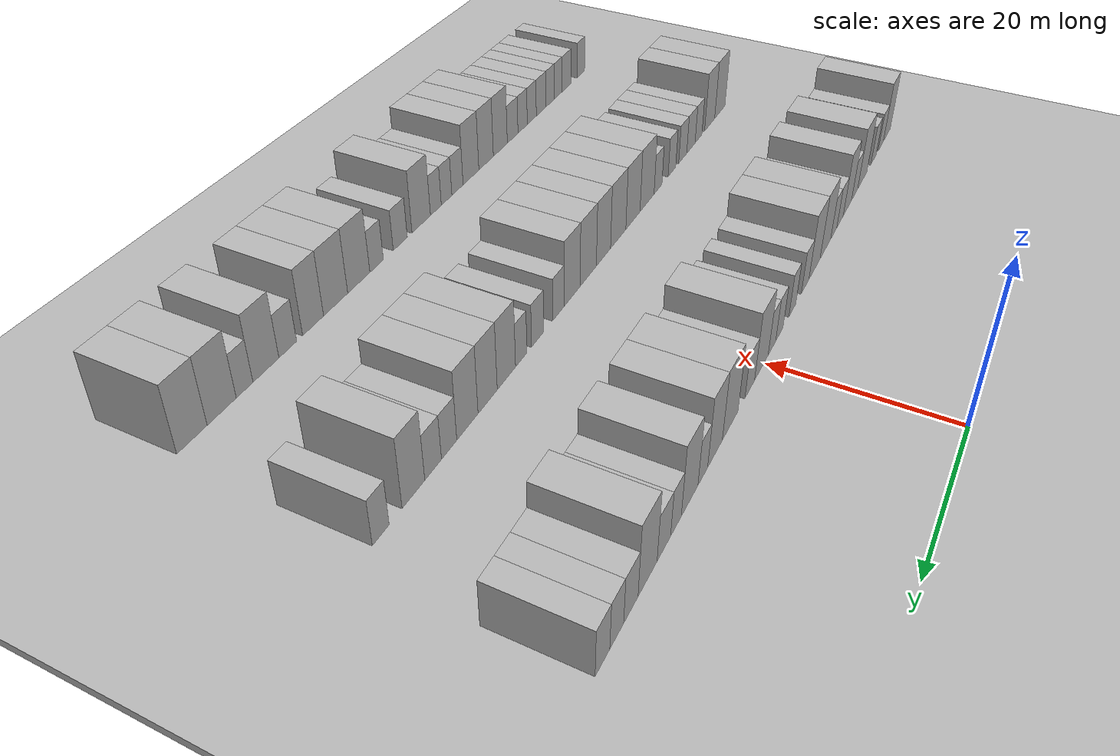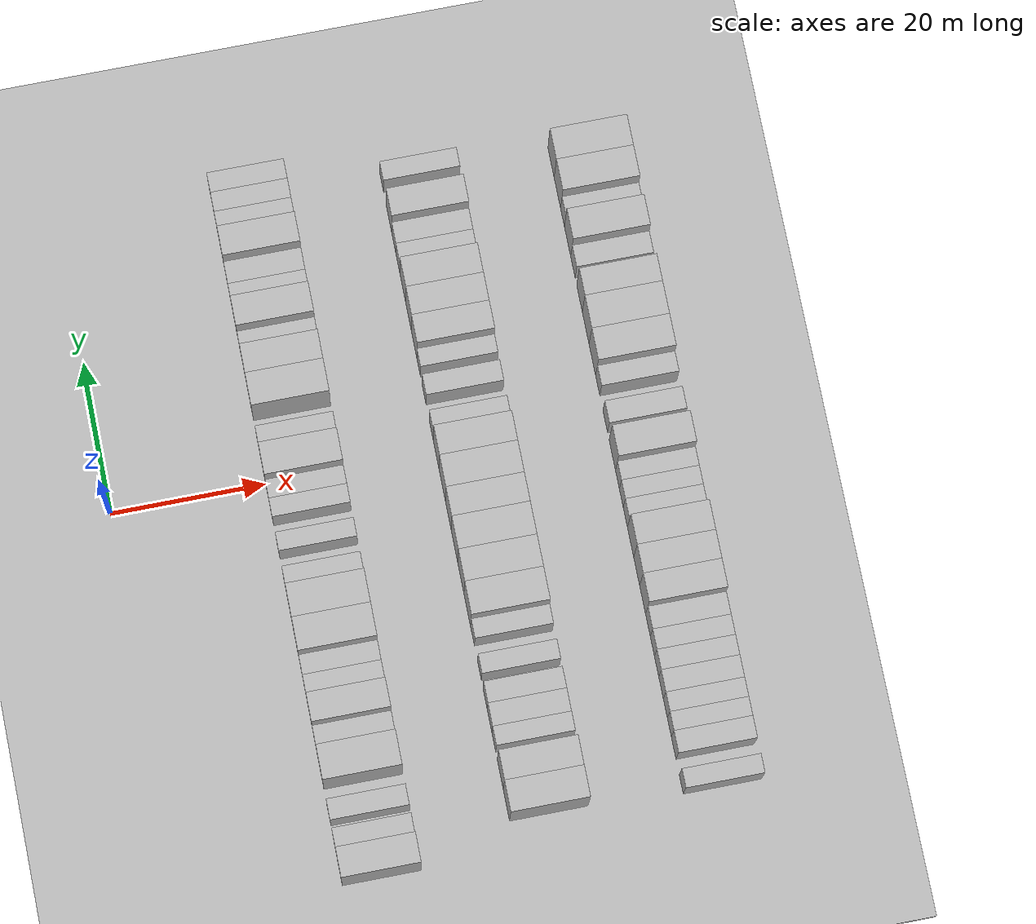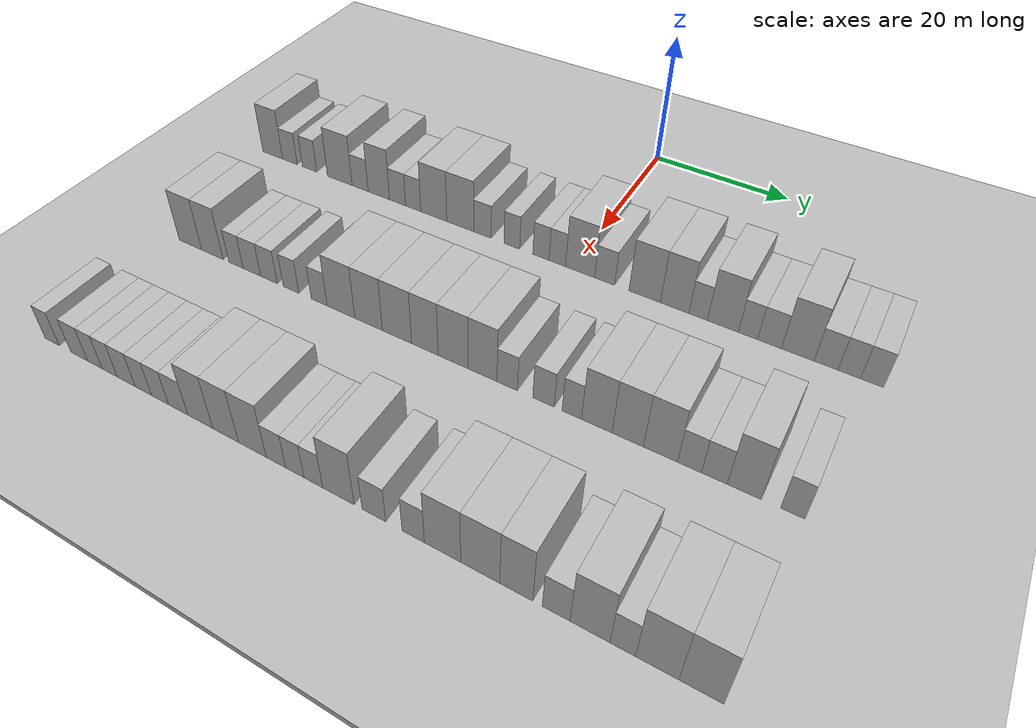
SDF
<sdf version="1.6">
 <world name="default">
  <include><name>ground_plane_1</name><uri>model://HANNAS_ground_plane</uri></include>
  <include>
   <name>ground_plane_2</name>
   <uri>model://HANNAS_ground_plane</uri>
   <pose>100 0 0  0 0 0</pose>
  </include>
  <model name="building_51">
   <static>1</static>
   <pose>25.0000 -50.2733 0 0.000000 0.000000 0.000000</pose>
   <link name="link">
    <pose>0 0 4.50 0 0 0</pose>
    <collision name="collision"><geometry><box><size>10.0000 3.8433 9.0000</size></box></geometry></collision>
    <visual name="visual">
     <cast_shadows>0</cast_shadows>
     <geometry><box><size>10.0000 3.8433 9.0000</size></box></geometry>
     <material>
      <script>
       <uri>model://HANNAS_wall/materials/scripts</uri>
       <uri>model://HANNAS_wall/materials/textures</uri>
       <name>vrc/HANNAS_wall</name>
      </script>
     </material>
    </visual>
   </link>
  </model>
  <model name="building_52">
   <static>1</static>
   <pose>25.0000 -46.9566 0 0.000000 0.000000 0.000000</pose>
   <link name="link">
    <pose>0 0 3.00 0 0 0</pose>
    <collision name="collision"><geometry><box><size>10.0000 2.7902 6.0000</size></box></geometry></collision>
    <visual name="visual">
     <cast_shadows>0</cast_shadows>
     <geometry><box><size>10.0000 2.7902 6.0000</size></box></geometry>
     <material>
      <script>
       <uri>model://HANNAS_wall/materials/scripts</uri>
       <uri>model://HANNAS_wall/materials/textures</uri>
       <name>vrc/HANNAS_wall</name>
      </script>
     </material>
    </visual>
   </link>
  </model>
  <model name="building_53">
   <static>1</static>
   <pose>25.0000 -43.2240 0 0.000000 0.000000 0.000000</pose>
   <link name="link">
    <pose>0 0 3.00 0 0 0</pose>
    <collision name="collision"><geometry><box><size>10.0000 2.6751 6.0000</size></box></geometry></collision>
    <visual name="visual">
     <cast_shadows>0</cast_shadows>
     <geometry><box><size>10.0000 2.6751 6.0000</size></box></geometry>
     <material>
      <script>
       <uri>model://HANNAS_wall/materials/scripts</uri>
       <uri>model://HANNAS_wall/materials/textures</uri>
       <name>vrc/HANNAS_wall</name>
      </script>
     </material>
    </visual>
   </link>
  </model>
  <model name="building_54">
   <static>1</static>
   <pose>25.0000 -37.6409 0 0.000000 0.000000 0.000000</pose>
   <link name="link">
    <pose>0 0 4.50 0 0 0</pose>
    <collision name="collision"><geometry><box><size>10.0000 4.4911 9.0000</size></box></geometry></collision>
    <visual name="visual">
     <cast_shadows>0</cast_shadows>
     <geometry><box><size>10.0000 4.4911 9.0000</size></box></geometry>
     <material>
      <script>
       <uri>model://HANNAS_wall/materials/scripts</uri>
       <uri>model://HANNAS_wall/materials/textures</uri>
       <name>vrc/HANNAS_wall</name>
      </script>
     </material>
    </visual>
   </link>
  </model>
  <model name="building_55">
   <static>1</static>
   <pose>25.0000 -33.9652 0 0.000000 0.000000 0.000000</pose>
   <link name="link">
    <pose>0 0 3.00 0 0 0</pose>
    <collision name="collision"><geometry><box><size>10.0000 2.8602 6.0000</size></box></geometry></collision>
    <visual name="visual">
     <cast_shadows>0</cast_shadows>
     <geometry><box><size>10.0000 2.8602 6.0000</size></box></geometry>
     <material>
      <script>
       <uri>model://HANNAS_wall/materials/scripts</uri>
       <uri>model://HANNAS_wall/materials/textures</uri>
       <name>vrc/HANNAS_wall</name>
      </script>
     </material>
    </visual>
   </link>
  </model>
  <model name="building_56">
   <static>1</static>
   <pose>25.0000 -30.6620 0 0.000000 0.000000 0.000000</pose>
   <link name="link">
    <pose>0 0 4.50 0 0 0</pose>
    <collision name="collision"><geometry><box><size>10.0000 3.7462 9.0000</size></box></geometry></collision>
    <visual name="visual">
     <cast_shadows>0</cast_shadows>
     <geometry><box><size>10.0000 3.7462 9.0000</size></box></geometry>
     <material>
      <script>
       <uri>model://HANNAS_wall/materials/scripts</uri>
       <uri>model://HANNAS_wall/materials/textures</uri>
       <name>vrc/HANNAS_wall</name>
      </script>
     </material>
    </visual>
   </link>
  </model>
  <model name="building_57">
   <static>1</static>
   <pose>25.0000 -27.4047 0 0.000000 0.000000 0.000000</pose>
   <link name="link">
    <pose>0 0 3.00 0 0 0</pose>
    <collision name="collision"><geometry><box><size>10.0000 2.7684 6.0000</size></box></geometry></collision>
    <visual name="visual">
     <cast_shadows>0</cast_shadows>
     <geometry><box><size>10.0000 2.7684 6.0000</size></box></geometry>
     <material>
      <script>
       <uri>model://HANNAS_wall/materials/scripts</uri>
       <uri>model://HANNAS_wall/materials/textures</uri>
       <name>vrc/HANNAS_wall</name>
      </script>
     </material>
    </visual>
   </link>
  </model>
  <model name="building_58">
   <static>1</static>
   <pose>25.0000 -24.7375 0 0.000000 0.000000 0.000000</pose>
   <link name="link">
    <pose>0 0 3.00 0 0 0</pose>
    <collision name="collision"><geometry><box><size>10.0000 2.5661 6.0000</size></box></geometry></collision>
    <visual name="visual">
     <cast_shadows>0</cast_shadows>
     <geometry><box><size>10.0000 2.5661 6.0000</size></box></geometry>
     <material>
      <script>
       <uri>model://HANNAS_wall/materials/scripts</uri>
       <uri>model://HANNAS_wall/materials/textures</uri>
       <name>vrc/HANNAS_wall</name>
      </script>
     </material>
    </visual>
   </link>
  </model>
  <model name="building_59">
   <static>1</static>
   <pose>25.0000 -21.2912 0 0.000000 0.000000 0.000000</pose>
   <link name="link">
    <pose>0 0 4.50 0 0 0</pose>
    <collision name="collision"><geometry><box><size>10.0000 4.3265 9.0000</size></box></geometry></collision>
    <visual name="visual">
     <cast_shadows>0</cast_shadows>
     <geometry><box><size>10.0000 4.3265 9.0000</size></box></geometry>
     <material>
      <script>
       <uri>model://HANNAS_wall/materials/scripts</uri>
       <uri>model://HANNAS_wall/materials/textures</uri>
       <name>vrc/HANNAS_wall</name>
      </script>
     </material>
    </visual>
   </link>
  </model>
  <model name="building_60">
   <static>1</static>
   <pose>25.0000 -16.9605 0 0.000000 0.000000 0.000000</pose>
   <link name="link">
    <pose>0 0 4.50 0 0 0</pose>
    <collision name="collision"><geometry><box><size>10.0000 4.3350 9.0000</size></box></geometry></collision>
    <visual name="visual">
     <cast_shadows>0</cast_shadows>
     <geometry><box><size>10.0000 4.3350 9.0000</size></box></geometry>
     <material>
      <script>
       <uri>model://HANNAS_wall/materials/scripts</uri>
       <uri>model://HANNAS_wall/materials/textures</uri>
       <name>vrc/HANNAS_wall</name>
      </script>
     </material>
    </visual>
   </link>
  </model>
  <model name="building_61">
   <static>1</static>
   <pose>25.0000 -13.3949 0 0.000000 0.000000 0.000000</pose>
   <link name="link">
    <pose>0 0 3.00 0 0 0</pose>
    <collision name="collision"><geometry><box><size>10.0000 2.7962 6.0000</size></box></geometry></collision>
    <visual name="visual">
     <cast_shadows>0</cast_shadows>
     <geometry><box><size>10.0000 2.7962 6.0000</size></box></geometry>
     <material>
      <script>
       <uri>model://HANNAS_wall/materials/scripts</uri>
       <uri>model://HANNAS_wall/materials/textures</uri>
       <name>vrc/HANNAS_wall</name>
      </script>
     </material>
    </visual>
   </link>
  </model>
  <model name="building_62">
   <static>1</static>
   <pose>25.0000 -8.7808 0 0.000000 0.000000 0.000000</pose>
   <link name="link">
    <pose>0 0 3.00 0 0 0</pose>
    <collision name="collision"><geometry><box><size>10.0000 2.4320 6.0000</size></box></geometry></collision>
    <visual name="visual">
     <cast_shadows>0</cast_shadows>
     <geometry><box><size>10.0000 2.4320 6.0000</size></box></geometry>
     <material>
      <script>
       <uri>model://HANNAS_wall/materials/scripts</uri>
       <uri>model://HANNAS_wall/materials/textures</uri>
       <name>vrc/HANNAS_wall</name>
      </script>
     </material>
    </visual>
   </link>
  </model>
  <model name="building_63">
   <static>1</static>
   <pose>25.0000 -4.3403 0 0.000000 0.000000 0.000000</pose>
   <link name="link">
    <pose>0 0 3.00 0 0 0</pose>
    <collision name="collision"><geometry><box><size>10.0000 2.4490 6.0000</size></box></geometry></collision>
    <visual name="visual">
     <cast_shadows>0</cast_shadows>
     <geometry><box><size>10.0000 2.4490 6.0000</size></box></geometry>
     <material>
      <script>
       <uri>model://HANNAS_wall/materials/scripts</uri>
       <uri>model://HANNAS_wall/materials/textures</uri>
       <name>vrc/HANNAS_wall</name>
      </script>
     </material>
    </visual>
   </link>
  </model>
  <model name="building_64">
   <static>1</static>
   <pose>25.0000 -1.9005 0 0.000000 0.000000 0.000000</pose>
   <link name="link">
    <pose>0 0 3.00 0 0 0</pose>
    <collision name="collision"><geometry><box><size>10.0000 2.4306 6.0000</size></box></geometry></collision>
    <visual name="visual">
     <cast_shadows>0</cast_shadows>
     <geometry><box><size>10.0000 2.4306 6.0000</size></box></geometry>
     <material>
      <script>
       <uri>model://HANNAS_wall/materials/scripts</uri>
       <uri>model://HANNAS_wall/materials/textures</uri>
       <name>vrc/HANNAS_wall</name>
      </script>
     </material>
    </visual>
   </link>
  </model>
  <model name="building_65">
   <static>1</static>
   <pose>25.0000 1.4244 0 0.000000 0.000000 0.000000</pose>
   <link name="link">
    <pose>0 0 4.50 0 0 0</pose>
    <collision name="collision"><geometry><box><size>10.0000 4.2192 9.0000</size></box></geometry></collision>
    <visual name="visual">
     <cast_shadows>0</cast_shadows>
     <geometry><box><size>10.0000 4.2192 9.0000</size></box></geometry>
     <material>
      <script>
       <uri>model://HANNAS_wall/materials/scripts</uri>
       <uri>model://HANNAS_wall/materials/textures</uri>
       <name>vrc/HANNAS_wall</name>
      </script>
     </material>
    </visual>
   </link>
  </model>
  <model name="building_66">
   <static>1</static>
   <pose>25.0000 4.9568 0 0.000000 0.000000 0.000000</pose>
   <link name="link">
    <pose>0 0 3.00 0 0 0</pose>
    <collision name="collision"><geometry><box><size>10.0000 2.8457 6.0000</size></box></geometry></collision>
    <visual name="visual">
     <cast_shadows>0</cast_shadows>
     <geometry><box><size>10.0000 2.8457 6.0000</size></box></geometry>
     <material>
      <script>
       <uri>model://HANNAS_wall/materials/scripts</uri>
       <uri>model://HANNAS_wall/materials/textures</uri>
       <name>vrc/HANNAS_wall</name>
      </script>
     </material>
    </visual>
   </link>
  </model>
  <model name="building_67">
   <static>1</static>
   <pose>25.0000 10.5281 0 0.000000 0.000000 0.000000</pose>
   <link name="link">
    <pose>0 0 4.50 0 0 0</pose>
    <collision name="collision"><geometry><box><size>10.0000 4.2969 9.0000</size></box></geometry></collision>
    <visual name="visual">
     <cast_shadows>0</cast_shadows>
     <geometry><box><size>10.0000 4.2969 9.0000</size></box></geometry>
     <material>
      <script>
       <uri>model://HANNAS_wall/materials/scripts</uri>
       <uri>model://HANNAS_wall/materials/textures</uri>
       <name>vrc/HANNAS_wall</name>
      </script>
     </material>
    </visual>
   </link>
  </model>
  <model name="building_68">
   <static>1</static>
   <pose>25.0000 14.5843 0 0.000000 0.000000 0.000000</pose>
   <link name="link">
    <pose>0 0 4.50 0 0 0</pose>
    <collision name="collision"><geometry><box><size>10.0000 3.8154 9.0000</size></box></geometry></collision>
    <visual name="visual">
     <cast_shadows>0</cast_shadows>
     <geometry><box><size>10.0000 3.8154 9.0000</size></box></geometry>
     <material>
      <script>
       <uri>model://HANNAS_wall/materials/scripts</uri>
       <uri>model://HANNAS_wall/materials/textures</uri>
       <name>vrc/HANNAS_wall</name>
      </script>
     </material>
    </visual>
   </link>
  </model>
  <model name="building_69">
   <static>1</static>
   <pose>25.0000 17.7012 0 0.000000 0.000000 0.000000</pose>
   <link name="link">
    <pose>0 0 3.00 0 0 0</pose>
    <collision name="collision"><geometry><box><size>10.0000 2.4185 6.0000</size></box></geometry></collision>
    <visual name="visual">
     <cast_shadows>0</cast_shadows>
     <geometry><box><size>10.0000 2.4185 6.0000</size></box></geometry>
     <material>
      <script>
       <uri>model://HANNAS_wall/materials/scripts</uri>
       <uri>model://HANNAS_wall/materials/textures</uri>
       <name>vrc/HANNAS_wall</name>
      </script>
     </material>
    </visual>
   </link>
  </model>
  <model name="building_70">
   <static>1</static>
   <pose>25.0000 20.8886 0 0.000000 0.000000 0.000000</pose>
   <link name="link">
    <pose>0 0 4.50 0 0 0</pose>
    <collision name="collision"><geometry><box><size>10.0000 3.9561 9.0000</size></box></geometry></collision>
    <visual name="visual">
     <cast_shadows>0</cast_shadows>
     <geometry><box><size>10.0000 3.9561 9.0000</size></box></geometry>
     <material>
      <script>
       <uri>model://HANNAS_wall/materials/scripts</uri>
       <uri>model://HANNAS_wall/materials/textures</uri>
       <name>vrc/HANNAS_wall</name>
      </script>
     </material>
    </visual>
   </link>
  </model>
  <model name="building_71">
   <static>1</static>
   <pose>25.0000 24.0791 0 0.000000 0.000000 0.000000</pose>
   <link name="link">
    <pose>0 0 3.00 0 0 0</pose>
    <collision name="collision"><geometry><box><size>10.0000 2.4249 6.0000</size></box></geometry></collision>
    <visual name="visual">
     <cast_shadows>0</cast_shadows>
     <geometry><box><size>10.0000 2.4249 6.0000</size></box></geometry>
     <material>
      <script>
       <uri>model://HANNAS_wall/materials/scripts</uri>
       <uri>model://HANNAS_wall/materials/textures</uri>
       <name>vrc/HANNAS_wall</name>
      </script>
     </material>
    </visual>
   </link>
  </model>
  <model name="building_72">
   <static>1</static>
   <pose>25.0000 26.7644 0 0.000000 0.000000 0.000000</pose>
   <link name="link">
    <pose>0 0 3.00 0 0 0</pose>
    <collision name="collision"><geometry><box><size>10.0000 2.9459 6.0000</size></box></geometry></collision>
    <visual name="visual">
     <cast_shadows>0</cast_shadows>
     <geometry><box><size>10.0000 2.9459 6.0000</size></box></geometry>
     <material>
      <script>
       <uri>model://HANNAS_wall/materials/scripts</uri>
       <uri>model://HANNAS_wall/materials/textures</uri>
       <name>vrc/HANNAS_wall</name>
      </script>
     </material>
    </visual>
   </link>
  </model>
  <model name="building_73">
   <static>1</static>
   <pose>25.0000 30.2026 0 0.000000 0.000000 0.000000</pose>
   <link name="link">
    <pose>0 0 4.50 0 0 0</pose>
    <collision name="collision"><geometry><box><size>10.0000 3.9305 9.0000</size></box></geometry></collision>
    <visual name="visual">
     <cast_shadows>0</cast_shadows>
     <geometry><box><size>10.0000 3.9305 9.0000</size></box></geometry>
     <material>
      <script>
       <uri>model://HANNAS_wall/materials/scripts</uri>
       <uri>model://HANNAS_wall/materials/textures</uri>
       <name>vrc/HANNAS_wall</name>
      </script>
     </material>
    </visual>
   </link>
  </model>
  <model name="building_74">
   <static>1</static>
   <pose>25.0000 33.5759 0 0.000000 0.000000 0.000000</pose>
   <link name="link">
    <pose>0 0 3.00 0 0 0</pose>
    <collision name="collision"><geometry><box><size>10.0000 2.8161 6.0000</size></box></geometry></collision>
    <visual name="visual">
     <cast_shadows>0</cast_shadows>
     <geometry><box><size>10.0000 2.8161 6.0000</size></box></geometry>
     <material>
      <script>
       <uri>model://HANNAS_wall/materials/scripts</uri>
       <uri>model://HANNAS_wall/materials/textures</uri>
       <name>vrc/HANNAS_wall</name>
      </script>
     </material>
    </visual>
   </link>
  </model>
  <model name="building_75">
   <static>1</static>
   <pose>25.0000 36.2824 0 0.000000 0.000000 0.000000</pose>
   <link name="link">
    <pose>0 0 3.00 0 0 0</pose>
    <collision name="collision"><geometry><box><size>10.0000 2.5968 6.0000</size></box></geometry></collision>
    <visual name="visual">
     <cast_shadows>0</cast_shadows>
     <geometry><box><size>10.0000 2.5968 6.0000</size></box></geometry>
     <material>
      <script>
       <uri>model://HANNAS_wall/materials/scripts</uri>
       <uri>model://HANNAS_wall/materials/textures</uri>
       <name>vrc/HANNAS_wall</name>
      </script>
     </material>
    </visual>
   </link>
  </model>
  <model name="building_76">
   <static>1</static>
   <pose>25.0000 38.9004 0 0.000000 0.000000 0.000000</pose>
   <link name="link">
    <pose>0 0 3.00 0 0 0</pose>
    <collision name="collision"><geometry><box><size>10.0000 2.6391 6.0000</size></box></geometry></collision>
    <visual name="visual">
     <cast_shadows>0</cast_shadows>
     <geometry><box><size>10.0000 2.6391 6.0000</size></box></geometry>
     <material>
      <script>
       <uri>model://HANNAS_wall/materials/scripts</uri>
       <uri>model://HANNAS_wall/materials/textures</uri>
       <name>vrc/HANNAS_wall</name>
      </script>
     </material>
    </visual>
   </link>
  </model>
  <model name="building_173">
   <static>1</static>
   <pose>47.0000 -46.2125 0 0.000000 0.000000 0.000000</pose>
   <link name="link">
    <pose>0 0 4.50 0 0 0</pose>
    <collision name="collision"><geometry><box><size>10.0000 4.0452 9.0000</size></box></geometry></collision>
    <visual name="visual">
     <cast_shadows>0</cast_shadows>
     <geometry><box><size>10.0000 4.0452 9.0000</size></box></geometry>
     <material>
      <script>
       <uri>model://HANNAS_wall/materials/scripts</uri>
       <uri>model://HANNAS_wall/materials/textures</uri>
       <name>vrc/HANNAS_wall</name>
      </script>
     </material>
    </visual>
   </link>
  </model>
  <model name="building_174">
   <static>1</static>
   <pose>47.0000 -42.2764 0 0.000000 0.000000 0.000000</pose>
   <link name="link">
    <pose>0 0 4.50 0 0 0</pose>
    <collision name="collision"><geometry><box><size>10.0000 3.8271 9.0000</size></box></geometry></collision>
    <visual name="visual">
     <cast_shadows>0</cast_shadows>
     <geometry><box><size>10.0000 3.8271 9.0000</size></box></geometry>
     <material>
      <script>
       <uri>model://HANNAS_wall/materials/scripts</uri>
       <uri>model://HANNAS_wall/materials/textures</uri>
       <name>vrc/HANNAS_wall</name>
      </script>
     </material>
    </visual>
   </link>
  </model>
  <model name="building_175">
   <static>1</static>
   <pose>47.0000 -38.1267 0 0.000000 0.000000 0.000000</pose>
   <link name="link">
    <pose>0 0 3.00 0 0 0</pose>
    <collision name="collision"><geometry><box><size>10.0000 2.4723 6.0000</size></box></geometry></collision>
    <visual name="visual">
     <cast_shadows>0</cast_shadows>
     <geometry><box><size>10.0000 2.4723 6.0000</size></box></geometry>
     <material>
      <script>
       <uri>model://HANNAS_wall/materials/scripts</uri>
       <uri>model://HANNAS_wall/materials/textures</uri>
       <name>vrc/HANNAS_wall</name>
      </script>
     </material>
    </visual>
   </link>
  </model>
  <model name="building_176">
   <static>1</static>
   <pose>47.0000 -35.3993 0 0.000000 0.000000 0.000000</pose>
   <link name="link">
    <pose>0 0 3.00 0 0 0</pose>
    <collision name="collision"><geometry><box><size>10.0000 2.9823 6.0000</size></box></geometry></collision>
    <visual name="visual">
     <cast_shadows>0</cast_shadows>
     <geometry><box><size>10.0000 2.9823 6.0000</size></box></geometry>
     <material>
      <script>
       <uri>model://HANNAS_wall/materials/scripts</uri>
       <uri>model://HANNAS_wall/materials/textures</uri>
       <name>vrc/HANNAS_wall</name>
      </script>
     </material>
    </visual>
   </link>
  </model>
  <model name="building_177">
   <static>1</static>
   <pose>47.0000 -32.5239 0 0.000000 0.000000 0.000000</pose>
   <link name="link">
    <pose>0 0 3.00 0 0 0</pose>
    <collision name="collision"><geometry><box><size>10.0000 2.7686 6.0000</size></box></geometry></collision>
    <visual name="visual">
     <cast_shadows>0</cast_shadows>
     <geometry><box><size>10.0000 2.7686 6.0000</size></box></geometry>
     <material>
      <script>
       <uri>model://HANNAS_wall/materials/scripts</uri>
       <uri>model://HANNAS_wall/materials/textures</uri>
       <name>vrc/HANNAS_wall</name>
      </script>
     </material>
    </visual>
   </link>
  </model>
  <model name="building_178">
   <static>1</static>
   <pose>47.0000 -28.8742 0 0.000000 0.000000 0.000000</pose>
   <link name="link">
    <pose>0 0 3.00 0 0 0</pose>
    <collision name="collision"><geometry><box><size>10.0000 2.5308 6.0000</size></box></geometry></collision>
    <visual name="visual">
     <cast_shadows>0</cast_shadows>
     <geometry><box><size>10.0000 2.5308 6.0000</size></box></geometry>
     <material>
      <script>
       <uri>model://HANNAS_wall/materials/scripts</uri>
       <uri>model://HANNAS_wall/materials/textures</uri>
       <name>vrc/HANNAS_wall</name>
      </script>
     </material>
    </visual>
   </link>
  </model>
  <model name="building_179">
   <static>1</static>
   <pose>47.0000 -24.3496 0 0.000000 0.000000 0.000000</pose>
   <link name="link">
    <pose>0 0 3.00 0 0 0</pose>
    <collision name="collision"><geometry><box><size>10.0000 2.5184 6.0000</size></box></geometry></collision>
    <visual name="visual">
     <cast_shadows>0</cast_shadows>
     <geometry><box><size>10.0000 2.5184 6.0000</size></box></geometry>
     <material>
      <script>
       <uri>model://HANNAS_wall/materials/scripts</uri>
       <uri>model://HANNAS_wall/materials/textures</uri>
       <name>vrc/HANNAS_wall</name>
      </script>
     </material>
    </visual>
   </link>
  </model>
  <model name="building_180">
   <static>1</static>
   <pose>47.0000 -20.9405 0 0.000000 0.000000 0.000000</pose>
   <link name="link">
    <pose>0 0 4.50 0 0 0</pose>
    <collision name="collision"><geometry><box><size>10.0000 4.2999 9.0000</size></box></geometry></collision>
    <visual name="visual">
     <cast_shadows>0</cast_shadows>
     <geometry><box><size>10.0000 4.2999 9.0000</size></box></geometry>
     <material>
      <script>
       <uri>model://HANNAS_wall/materials/scripts</uri>
       <uri>model://HANNAS_wall/materials/textures</uri>
       <name>vrc/HANNAS_wall</name>
      </script>
     </material>
    </visual>
   </link>
  </model>
  <model name="building_181">
   <static>1</static>
   <pose>47.0000 -16.7111 0 0.000000 0.000000 0.000000</pose>
   <link name="link">
    <pose>0 0 4.50 0 0 0</pose>
    <collision name="collision"><geometry><box><size>10.0000 4.1588 9.0000</size></box></geometry></collision>
    <visual name="visual">
     <cast_shadows>0</cast_shadows>
     <geometry><box><size>10.0000 4.1588 9.0000</size></box></geometry>
     <material>
      <script>
       <uri>model://HANNAS_wall/materials/scripts</uri>
       <uri>model://HANNAS_wall/materials/textures</uri>
       <name>vrc/HANNAS_wall</name>
      </script>
     </material>
    </visual>
   </link>
  </model>
  <model name="building_182">
   <static>1</static>
   <pose>47.0000 -12.4908 0 0.000000 0.000000 0.000000</pose>
   <link name="link">
    <pose>0 0 4.50 0 0 0</pose>
    <collision name="collision"><geometry><box><size>10.0000 4.2818 9.0000</size></box></geometry></collision>
    <visual name="visual">
     <cast_shadows>0</cast_shadows>
     <geometry><box><size>10.0000 4.2818 9.0000</size></box></geometry>
     <material>
      <script>
       <uri>model://HANNAS_wall/materials/scripts</uri>
       <uri>model://HANNAS_wall/materials/textures</uri>
       <name>vrc/HANNAS_wall</name>
      </script>
     </material>
    </visual>
   </link>
  </model>
  <model name="building_183">
   <static>1</static>
   <pose>47.0000 -8.4494 0 0.000000 0.000000 0.000000</pose>
   <link name="link">
    <pose>0 0 4.50 0 0 0</pose>
    <collision name="collision"><geometry><box><size>10.0000 3.8009 9.0000</size></box></geometry></collision>
    <visual name="visual">
     <cast_shadows>0</cast_shadows>
     <geometry><box><size>10.0000 3.8009 9.0000</size></box></geometry>
     <material>
      <script>
       <uri>model://HANNAS_wall/materials/scripts</uri>
       <uri>model://HANNAS_wall/materials/textures</uri>
       <name>vrc/HANNAS_wall</name>
      </script>
     </material>
    </visual>
   </link>
  </model>
  <model name="building_184">
   <static>1</static>
   <pose>47.0000 -4.4638 0 0.000000 0.000000 0.000000</pose>
   <link name="link">
    <pose>0 0 4.50 0 0 0</pose>
    <collision name="collision"><geometry><box><size>10.0000 4.1704 9.0000</size></box></geometry></collision>
    <visual name="visual">
     <cast_shadows>0</cast_shadows>
     <geometry><box><size>10.0000 4.1704 9.0000</size></box></geometry>
     <material>
      <script>
       <uri>model://HANNAS_wall/materials/scripts</uri>
       <uri>model://HANNAS_wall/materials/textures</uri>
       <name>vrc/HANNAS_wall</name>
      </script>
     </material>
    </visual>
   </link>
  </model>
  <model name="building_185">
   <static>1</static>
   <pose>47.0000 -0.4371 0 0.000000 0.000000 0.000000</pose>
   <link name="link">
    <pose>0 0 4.50 0 0 0</pose>
    <collision name="collision"><geometry><box><size>10.0000 3.8829 9.0000</size></box></geometry></collision>
    <visual name="visual">
     <cast_shadows>0</cast_shadows>
     <geometry><box><size>10.0000 3.8829 9.0000</size></box></geometry>
     <material>
      <script>
       <uri>model://HANNAS_wall/materials/scripts</uri>
       <uri>model://HANNAS_wall/materials/textures</uri>
       <name>vrc/HANNAS_wall</name>
      </script>
     </material>
    </visual>
   </link>
  </model>
  <model name="building_186">
   <static>1</static>
   <pose>47.0000 2.8583 0 0.000000 0.000000 0.000000</pose>
   <link name="link">
    <pose>0 0 3.00 0 0 0</pose>
    <collision name="collision"><geometry><box><size>10.0000 2.7080 6.0000</size></box></geometry></collision>
    <visual name="visual">
     <cast_shadows>0</cast_shadows>
     <geometry><box><size>10.0000 2.7080 6.0000</size></box></geometry>
     <material>
      <script>
       <uri>model://HANNAS_wall/materials/scripts</uri>
       <uri>model://HANNAS_wall/materials/textures</uri>
       <name>vrc/HANNAS_wall</name>
      </script>
     </material>
    </visual>
   </link>
  </model>
  <model name="building_187">
   <static>1</static>
   <pose>47.0000 7.5815 0 0.000000 0.000000 0.000000</pose>
   <link name="link">
    <pose>0 0 3.00 0 0 0</pose>
    <collision name="collision"><geometry><box><size>10.0000 2.7386 6.0000</size></box></geometry></collision>
    <visual name="visual">
     <cast_shadows>0</cast_shadows>
     <geometry><box><size>10.0000 2.7386 6.0000</size></box></geometry>
     <material>
      <script>
       <uri>model://HANNAS_wall/materials/scripts</uri>
       <uri>model://HANNAS_wall/materials/textures</uri>
       <name>vrc/HANNAS_wall</name>
      </script>
     </material>
    </visual>
   </link>
  </model>
  <model name="building_188">
   <static>1</static>
   <pose>47.0000 11.1514 0 0.000000 0.000000 0.000000</pose>
   <link name="link">
    <pose>0 0 3.00 0 0 0</pose>
    <collision name="collision"><geometry><box><size>10.0000 2.4013 6.0000</size></box></geometry></collision>
    <visual name="visual">
     <cast_shadows>0</cast_shadows>
     <geometry><box><size>10.0000 2.4013 6.0000</size></box></geometry>
     <material>
      <script>
       <uri>model://HANNAS_wall/materials/scripts</uri>
       <uri>model://HANNAS_wall/materials/textures</uri>
       <name>vrc/HANNAS_wall</name>
      </script>
     </material>
    </visual>
   </link>
  </model>
  <model name="building_189">
   <static>1</static>
   <pose>47.0000 14.2155 0 0.000000 0.000000 0.000000</pose>
   <link name="link">
    <pose>0 0 4.50 0 0 0</pose>
    <collision name="collision"><geometry><box><size>10.0000 3.7267 9.0000</size></box></geometry></collision>
    <visual name="visual">
     <cast_shadows>0</cast_shadows>
     <geometry><box><size>10.0000 3.7267 9.0000</size></box></geometry>
     <material>
      <script>
       <uri>model://HANNAS_wall/materials/scripts</uri>
       <uri>model://HANNAS_wall/materials/textures</uri>
       <name>vrc/HANNAS_wall</name>
      </script>
     </material>
    </visual>
   </link>
  </model>
  <model name="building_190">
   <static>1</static>
   <pose>47.0000 17.9432 0 0.000000 0.000000 0.000000</pose>
   <link name="link">
    <pose>0 0 4.50 0 0 0</pose>
    <collision name="collision"><geometry><box><size>10.0000 3.7288 9.0000</size></box></geometry></collision>
    <visual name="visual">
     <cast_shadows>0</cast_shadows>
     <geometry><box><size>10.0000 3.7288 9.0000</size></box></geometry>
     <material>
      <script>
       <uri>model://HANNAS_wall/materials/scripts</uri>
       <uri>model://HANNAS_wall/materials/textures</uri>
       <name>vrc/HANNAS_wall</name>
      </script>
     </material>
    </visual>
   </link>
  </model>
  <model name="building_191">
   <static>1</static>
   <pose>47.0000 21.7704 0 0.000000 0.000000 0.000000</pose>
   <link name="link">
    <pose>0 0 4.50 0 0 0</pose>
    <collision name="collision"><geometry><box><size>10.0000 3.9255 9.0000</size></box></geometry></collision>
    <visual name="visual">
     <cast_shadows>0</cast_shadows>
     <geometry><box><size>10.0000 3.9255 9.0000</size></box></geometry>
     <material>
      <script>
       <uri>model://HANNAS_wall/materials/scripts</uri>
       <uri>model://HANNAS_wall/materials/textures</uri>
       <name>vrc/HANNAS_wall</name>
      </script>
     </material>
    </visual>
   </link>
  </model>
  <model name="building_192">
   <static>1</static>
   <pose>47.0000 25.0814 0 0.000000 0.000000 0.000000</pose>
   <link name="link">
    <pose>0 0 3.00 0 0 0</pose>
    <collision name="collision"><geometry><box><size>10.0000 2.6965 6.0000</size></box></geometry></collision>
    <visual name="visual">
     <cast_shadows>0</cast_shadows>
     <geometry><box><size>10.0000 2.6965 6.0000</size></box></geometry>
     <material>
      <script>
       <uri>model://HANNAS_wall/materials/scripts</uri>
       <uri>model://HANNAS_wall/materials/textures</uri>
       <name>vrc/HANNAS_wall</name>
      </script>
     </material>
    </visual>
   </link>
  </model>
  <model name="building_193">
   <static>1</static>
   <pose>47.0000 27.8460 0 0.000000 0.000000 0.000000</pose>
   <link name="link">
    <pose>0 0 3.00 0 0 0</pose>
    <collision name="collision"><geometry><box><size>10.0000 2.8327 6.0000</size></box></geometry></collision>
    <visual name="visual">
     <cast_shadows>0</cast_shadows>
     <geometry><box><size>10.0000 2.8327 6.0000</size></box></geometry>
     <material>
      <script>
       <uri>model://HANNAS_wall/materials/scripts</uri>
       <uri>model://HANNAS_wall/materials/textures</uri>
       <name>vrc/HANNAS_wall</name>
      </script>
     </material>
    </visual>
   </link>
  </model>
  <model name="building_194">
   <static>1</static>
   <pose>47.0000 31.0983 0 0.000000 0.000000 0.000000</pose>
   <link name="link">
    <pose>0 0 4.50 0 0 0</pose>
    <collision name="collision"><geometry><box><size>10.0000 3.6720 9.0000</size></box></geometry></collision>
    <visual name="visual">
     <cast_shadows>0</cast_shadows>
     <geometry><box><size>10.0000 3.6720 9.0000</size></box></geometry>
     <material>
      <script>
       <uri>model://HANNAS_wall/materials/scripts</uri>
       <uri>model://HANNAS_wall/materials/textures</uri>
       <name>vrc/HANNAS_wall</name>
      </script>
     </material>
    </visual>
   </link>
  </model>
  <model name="building_195">
   <static>1</static>
   <pose>47.0000 36.2042 0 0.000000 0.000000 0.000000</pose>
   <link name="link">
    <pose>0 0 3.00 0 0 0</pose>
    <collision name="collision"><geometry><box><size>10.0000 2.5398 6.0000</size></box></geometry></collision>
    <visual name="visual">
     <cast_shadows>0</cast_shadows>
     <geometry><box><size>10.0000 2.5398 6.0000</size></box></geometry>
     <material>
      <script>
       <uri>model://HANNAS_wall/materials/scripts</uri>
       <uri>model://HANNAS_wall/materials/textures</uri>
       <name>vrc/HANNAS_wall</name>
      </script>
     </material>
    </visual>
   </link>
  </model>
  <model name="building_299">
   <static>1</static>
   <pose>69.0000 -47.8098 0 0.000000 0.000000 0.000000</pose>
   <link name="link">
    <pose>0 0 3.00 0 0 0</pose>
    <collision name="collision"><geometry><box><size>10.0000 2.4639 6.0000</size></box></geometry></collision>
    <visual name="visual">
     <cast_shadows>0</cast_shadows>
     <geometry><box><size>10.0000 2.4639 6.0000</size></box></geometry>
     <material>
      <script>
       <uri>model://HANNAS_wall/materials/scripts</uri>
       <uri>model://HANNAS_wall/materials/textures</uri>
       <name>vrc/HANNAS_wall</name>
      </script>
     </material>
    </visual>
   </link>
  </model>
  <model name="building_300">
   <static>1</static>
   <pose>69.0000 -43.1507 0 0.000000 0.000000 0.000000</pose>
   <link name="link">
    <pose>0 0 3.00 0 0 0</pose>
    <collision name="collision"><geometry><box><size>10.0000 2.8543 6.0000</size></box></geometry></collision>
    <visual name="visual">
     <cast_shadows>0</cast_shadows>
     <geometry><box><size>10.0000 2.8543 6.0000</size></box></geometry>
     <material>
      <script>
       <uri>model://HANNAS_wall/materials/scripts</uri>
       <uri>model://HANNAS_wall/materials/textures</uri>
       <name>vrc/HANNAS_wall</name>
      </script>
     </material>
    </visual>
   </link>
  </model>
  <model name="building_301">
   <static>1</static>
   <pose>69.0000 -40.5052 0 0.000000 0.000000 0.000000</pose>
   <link name="link">
    <pose>0 0 3.00 0 0 0</pose>
    <collision name="collision"><geometry><box><size>10.0000 2.4367 6.0000</size></box></geometry></collision>
    <visual name="visual">
     <cast_shadows>0</cast_shadows>
     <geometry><box><size>10.0000 2.4367 6.0000</size></box></geometry>
     <material>
      <script>
       <uri>model://HANNAS_wall/materials/scripts</uri>
       <uri>model://HANNAS_wall/materials/textures</uri>
       <name>vrc/HANNAS_wall</name>
      </script>
     </material>
    </visual>
   </link>
  </model>
  <model name="building_302">
   <static>1</static>
   <pose>69.0000 -38.0384 0 0.000000 0.000000 0.000000</pose>
   <link name="link">
    <pose>0 0 3.00 0 0 0</pose>
    <collision name="collision"><geometry><box><size>10.0000 2.4969 6.0000</size></box></geometry></collision>
    <visual name="visual">
     <cast_shadows>0</cast_shadows>
     <geometry><box><size>10.0000 2.4969 6.0000</size></box></geometry>
     <material>
      <script>
       <uri>model://HANNAS_wall/materials/scripts</uri>
       <uri>model://HANNAS_wall/materials/textures</uri>
       <name>vrc/HANNAS_wall</name>
      </script>
     </material>
    </visual>
   </link>
  </model>
  <model name="building_303">
   <static>1</static>
   <pose>69.0000 -35.3542 0 0.000000 0.000000 0.000000</pose>
   <link name="link">
    <pose>0 0 3.00 0 0 0</pose>
    <collision name="collision"><geometry><box><size>10.0000 2.8716 6.0000</size></box></geometry></collision>
    <visual name="visual">
     <cast_shadows>0</cast_shadows>
     <geometry><box><size>10.0000 2.8716 6.0000</size></box></geometry>
     <material>
      <script>
       <uri>model://HANNAS_wall/materials/scripts</uri>
       <uri>model://HANNAS_wall/materials/textures</uri>
       <name>vrc/HANNAS_wall</name>
      </script>
     </material>
    </visual>
   </link>
  </model>
  <model name="building_304">
   <static>1</static>
   <pose>69.0000 -32.6110 0 0.000000 0.000000 0.000000</pose>
   <link name="link">
    <pose>0 0 3.00 0 0 0</pose>
    <collision name="collision"><geometry><box><size>10.0000 2.6148 6.0000</size></box></geometry></collision>
    <visual name="visual">
     <cast_shadows>0</cast_shadows>
     <geometry><box><size>10.0000 2.6148 6.0000</size></box></geometry>
     <material>
      <script>
       <uri>model://HANNAS_wall/materials/scripts</uri>
       <uri>model://HANNAS_wall/materials/textures</uri>
       <name>vrc/HANNAS_wall</name>
      </script>
     </material>
    </visual>
   </link>
  </model>
  <model name="building_305">
   <static>1</static>
   <pose>69.0000 -29.9909 0 0.000000 0.000000 0.000000</pose>
   <link name="link">
    <pose>0 0 3.00 0 0 0</pose>
    <collision name="collision"><geometry><box><size>10.0000 2.6253 6.0000</size></box></geometry></collision>
    <visual name="visual">
     <cast_shadows>0</cast_shadows>
     <geometry><box><size>10.0000 2.6253 6.0000</size></box></geometry>
     <material>
      <script>
       <uri>model://HANNAS_wall/materials/scripts</uri>
       <uri>model://HANNAS_wall/materials/textures</uri>
       <name>vrc/HANNAS_wall</name>
      </script>
     </material>
    </visual>
   </link>
  </model>
  <model name="building_306">
   <static>1</static>
   <pose>69.0000 -27.2129 0 0.000000 0.000000 0.000000</pose>
   <link name="link">
    <pose>0 0 3.00 0 0 0</pose>
    <collision name="collision"><geometry><box><size>10.0000 2.9306 6.0000</size></box></geometry></collision>
    <visual name="visual">
     <cast_shadows>0</cast_shadows>
     <geometry><box><size>10.0000 2.9306 6.0000</size></box></geometry>
     <material>
      <script>
       <uri>model://HANNAS_wall/materials/scripts</uri>
       <uri>model://HANNAS_wall/materials/textures</uri>
       <name>vrc/HANNAS_wall</name>
      </script>
     </material>
    </visual>
   </link>
  </model>
  <model name="building_307">
   <static>1</static>
   <pose>69.0000 -23.8899 0 0.000000 0.000000 0.000000</pose>
   <link name="link">
    <pose>0 0 4.50 0 0 0</pose>
    <collision name="collision"><geometry><box><size>10.0000 3.7155 9.0000</size></box></geometry></collision>
    <visual name="visual">
     <cast_shadows>0</cast_shadows>
     <geometry><box><size>10.0000 3.7155 9.0000</size></box></geometry>
     <material>
      <script>
       <uri>model://HANNAS_wall/materials/scripts</uri>
       <uri>model://HANNAS_wall/materials/textures</uri>
       <name>vrc/HANNAS_wall</name>
      </script>
     </material>
    </visual>
   </link>
  </model>
  <model name="building_308">
   <static>1</static>
   <pose>69.0000 -20.1689 0 0.000000 0.000000 0.000000</pose>
   <link name="link">
    <pose>0 0 4.50 0 0 0</pose>
    <collision name="collision"><geometry><box><size>10.0000 3.7264 9.0000</size></box></geometry></collision>
    <visual name="visual">
     <cast_shadows>0</cast_shadows>
     <geometry><box><size>10.0000 3.7264 9.0000</size></box></geometry>
     <material>
      <script>
       <uri>model://HANNAS_wall/materials/scripts</uri>
       <uri>model://HANNAS_wall/materials/textures</uri>
       <name>vrc/HANNAS_wall</name>
      </script>
     </material>
    </visual>
   </link>
  </model>
  <model name="building_309">
   <static>1</static>
   <pose>69.0000 -16.3553 0 0.000000 0.000000 0.000000</pose>
   <link name="link">
    <pose>0 0 4.50 0 0 0</pose>
    <collision name="collision"><geometry><box><size>10.0000 3.9007 9.0000</size></box></geometry></collision>
    <visual name="visual">
     <cast_shadows>0</cast_shadows>
     <geometry><box><size>10.0000 3.9007 9.0000</size></box></geometry>
     <material>
      <script>
       <uri>model://HANNAS_wall/materials/scripts</uri>
       <uri>model://HANNAS_wall/materials/textures</uri>
       <name>vrc/HANNAS_wall</name>
      </script>
     </material>
    </visual>
   </link>
  </model>
  <model name="building_310">
   <static>1</static>
   <pose>69.0000 -13.0646 0 0.000000 0.000000 0.000000</pose>
   <link name="link">
    <pose>0 0 3.00 0 0 0</pose>
    <collision name="collision"><geometry><box><size>10.0000 2.6808 6.0000</size></box></geometry></collision>
    <visual name="visual">
     <cast_shadows>0</cast_shadows>
     <geometry><box><size>10.0000 2.6808 6.0000</size></box></geometry>
     <material>
      <script>
       <uri>model://HANNAS_wall/materials/scripts</uri>
       <uri>model://HANNAS_wall/materials/textures</uri>
       <name>vrc/HANNAS_wall</name>
      </script>
     </material>
    </visual>
   </link>
  </model>
  <model name="building_311">
   <static>1</static>
   <pose>69.0000 -10.5008 0 0.000000 0.000000 0.000000</pose>
   <link name="link">
    <pose>0 0 3.00 0 0 0</pose>
    <collision name="collision"><geometry><box><size>10.0000 2.4468 6.0000</size></box></geometry></collision>
    <visual name="visual">
     <cast_shadows>0</cast_shadows>
     <geometry><box><size>10.0000 2.4468 6.0000</size></box></geometry>
     <material>
      <script>
       <uri>model://HANNAS_wall/materials/scripts</uri>
       <uri>model://HANNAS_wall/materials/textures</uri>
       <name>vrc/HANNAS_wall</name>
      </script>
     </material>
    </visual>
   </link>
  </model>
  <model name="building_312">
   <static>1</static>
   <pose>69.0000 -8.0471 0 0.000000 0.000000 0.000000</pose>
   <link name="link">
    <pose>0 0 3.00 0 0 0</pose>
    <collision name="collision"><geometry><box><size>10.0000 2.4607 6.0000</size></box></geometry></collision>
    <visual name="visual">
     <cast_shadows>0</cast_shadows>
     <geometry><box><size>10.0000 2.4607 6.0000</size></box></geometry>
     <material>
      <script>
       <uri>model://HANNAS_wall/materials/scripts</uri>
       <uri>model://HANNAS_wall/materials/textures</uri>
       <name>vrc/HANNAS_wall</name>
      </script>
     </material>
    </visual>
   </link>
  </model>
  <model name="building_313">
   <static>1</static>
   <pose>69.0000 -4.7926 0 0.000000 0.000000 0.000000</pose>
   <link name="link">
    <pose>0 0 4.50 0 0 0</pose>
    <collision name="collision"><geometry><box><size>10.0000 4.0483 9.0000</size></box></geometry></collision>
    <visual name="visual">
     <cast_shadows>0</cast_shadows>
     <geometry><box><size>10.0000 4.0483 9.0000</size></box></geometry>
     <material>
      <script>
       <uri>model://HANNAS_wall/materials/scripts</uri>
       <uri>model://HANNAS_wall/materials/textures</uri>
       <name>vrc/HANNAS_wall</name>
      </script>
     </material>
    </visual>
   </link>
  </model>
  <model name="building_314">
   <static>1</static>
   <pose>69.0000 -0.3077 0 0.000000 0.000000 0.000000</pose>
   <link name="link">
    <pose>0 0 3.00 0 0 0</pose>
    <collision name="collision"><geometry><box><size>10.0000 2.9214 6.0000</size></box></geometry></collision>
    <visual name="visual">
     <cast_shadows>0</cast_shadows>
     <geometry><box><size>10.0000 2.9214 6.0000</size></box></geometry>
     <material>
      <script>
       <uri>model://HANNAS_wall/materials/scripts</uri>
       <uri>model://HANNAS_wall/materials/textures</uri>
       <name>vrc/HANNAS_wall</name>
      </script>
     </material>
    </visual>
   </link>
  </model>
  <model name="building_315">
   <static>1</static>
   <pose>69.0000 4.4858 0 0.000000 0.000000 0.000000</pose>
   <link name="link">
    <pose>0 0 3.00 0 0 0</pose>
    <collision name="collision"><geometry><box><size>10.0000 2.6655 6.0000</size></box></geometry></collision>
    <visual name="visual">
     <cast_shadows>0</cast_shadows>
     <geometry><box><size>10.0000 2.6655 6.0000</size></box></geometry>
     <material>
      <script>
       <uri>model://HANNAS_wall/materials/scripts</uri>
       <uri>model://HANNAS_wall/materials/textures</uri>
       <name>vrc/HANNAS_wall</name>
      </script>
     </material>
    </visual>
   </link>
  </model>
  <model name="building_316">
   <static>1</static>
   <pose>69.0000 7.9249 0 0.000000 0.000000 0.000000</pose>
   <link name="link">
    <pose>0 0 4.50 0 0 0</pose>
    <collision name="collision"><geometry><box><size>10.0000 4.2127 9.0000</size></box></geometry></collision>
    <visual name="visual">
     <cast_shadows>0</cast_shadows>
     <geometry><box><size>10.0000 4.2127 9.0000</size></box></geometry>
     <material>
      <script>
       <uri>model://HANNAS_wall/materials/scripts</uri>
       <uri>model://HANNAS_wall/materials/textures</uri>
       <name>vrc/HANNAS_wall</name>
      </script>
     </material>
    </visual>
   </link>
  </model>
  <model name="building_317">
   <static>1</static>
   <pose>69.0000 12.2102 0 0.000000 0.000000 0.000000</pose>
   <link name="link">
    <pose>0 0 4.50 0 0 0</pose>
    <collision name="collision"><geometry><box><size>10.0000 4.3580 9.0000</size></box></geometry></collision>
    <visual name="visual">
     <cast_shadows>0</cast_shadows>
     <geometry><box><size>10.0000 4.3580 9.0000</size></box></geometry>
     <material>
      <script>
       <uri>model://HANNAS_wall/materials/scripts</uri>
       <uri>model://HANNAS_wall/materials/textures</uri>
       <name>vrc/HANNAS_wall</name>
      </script>
     </material>
    </visual>
   </link>
  </model>
  <model name="building_318">
   <static>1</static>
   <pose>69.0000 16.1915 0 0.000000 0.000000 0.000000</pose>
   <link name="link">
    <pose>0 0 4.50 0 0 0</pose>
    <collision name="collision"><geometry><box><size>10.0000 3.6046 9.0000</size></box></geometry></collision>
    <visual name="visual">
     <cast_shadows>0</cast_shadows>
     <geometry><box><size>10.0000 3.6046 9.0000</size></box></geometry>
     <material>
      <script>
       <uri>model://HANNAS_wall/materials/scripts</uri>
       <uri>model://HANNAS_wall/materials/textures</uri>
       <name>vrc/HANNAS_wall</name>
      </script>
     </material>
    </visual>
   </link>
  </model>
  <model name="building_319">
   <static>1</static>
   <pose>69.0000 20.4439 0 0.000000 0.000000 0.000000</pose>
   <link name="link">
    <pose>0 0 3.00 0 0 0</pose>
    <collision name="collision"><geometry><box><size>10.0000 2.9002 6.0000</size></box></geometry></collision>
    <visual name="visual">
     <cast_shadows>0</cast_shadows>
     <geometry><box><size>10.0000 2.9002 6.0000</size></box></geometry>
     <material>
      <script>
       <uri>model://HANNAS_wall/materials/scripts</uri>
       <uri>model://HANNAS_wall/materials/textures</uri>
       <name>vrc/HANNAS_wall</name>
      </script>
     </material>
    </visual>
   </link>
  </model>
  <model name="building_320">
   <static>1</static>
   <pose>69.0000 23.9214 0 0.000000 0.000000 0.000000</pose>
   <link name="link">
    <pose>0 0 4.50 0 0 0</pose>
    <collision name="collision"><geometry><box><size>10.0000 4.0549 9.0000</size></box></geometry></collision>
    <visual name="visual">
     <cast_shadows>0</cast_shadows>
     <geometry><box><size>10.0000 4.0549 9.0000</size></box></geometry>
     <material>
      <script>
       <uri>model://HANNAS_wall/materials/scripts</uri>
       <uri>model://HANNAS_wall/materials/textures</uri>
       <name>vrc/HANNAS_wall</name>
      </script>
     </material>
    </visual>
   </link>
  </model>
  <model name="building_321">
   <static>1</static>
   <pose>69.0000 27.1998 0 0.000000 0.000000 0.000000</pose>
   <link name="link">
    <pose>0 0 3.00 0 0 0</pose>
    <collision name="collision"><geometry><box><size>10.0000 2.5019 6.0000</size></box></geometry></collision>
    <visual name="visual">
     <cast_shadows>0</cast_shadows>
     <geometry><box><size>10.0000 2.5019 6.0000</size></box></geometry>
     <material>
      <script>
       <uri>model://HANNAS_wall/materials/scripts</uri>
       <uri>model://HANNAS_wall/materials/textures</uri>
       <name>vrc/HANNAS_wall</name>
      </script>
     </material>
    </visual>
   </link>
  </model>
  <model name="building_322">
   <static>1</static>
   <pose>69.0000 30.5377 0 0.000000 0.000000 0.000000</pose>
   <link name="link">
    <pose>0 0 4.50 0 0 0</pose>
    <collision name="collision"><geometry><box><size>10.0000 4.1740 9.0000</size></box></geometry></collision>
    <visual name="visual">
     <cast_shadows>0</cast_shadows>
     <geometry><box><size>10.0000 4.1740 9.0000</size></box></geometry>
     <material>
      <script>
       <uri>model://HANNAS_wall/materials/scripts</uri>
       <uri>model://HANNAS_wall/materials/textures</uri>
       <name>vrc/HANNAS_wall</name>
      </script>
     </material>
    </visual>
   </link>
  </model>
  <model name="building_323">
   <static>1</static>
   <pose>69.0000 34.6921 0 0.000000 0.000000 0.000000</pose>
   <link name="link">
    <pose>0 0 4.50 0 0 0</pose>
    <collision name="collision"><geometry><box><size>10.0000 4.1346 9.0000</size></box></geometry></collision>
    <visual name="visual">
     <cast_shadows>0</cast_shadows>
     <geometry><box><size>10.0000 4.1346 9.0000</size></box></geometry>
     <material>
      <script>
       <uri>model://HANNAS_wall/materials/scripts</uri>
       <uri>model://HANNAS_wall/materials/textures</uri>
       <name>vrc/HANNAS_wall</name>
      </script>
     </material>
    </visual>
   </link>
  </model>
 </world>
</sdf>
